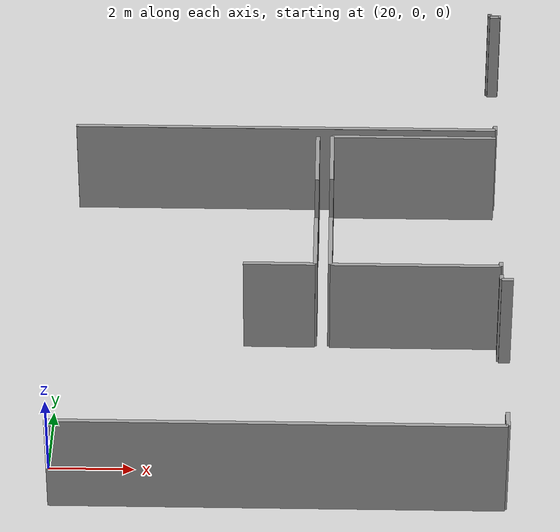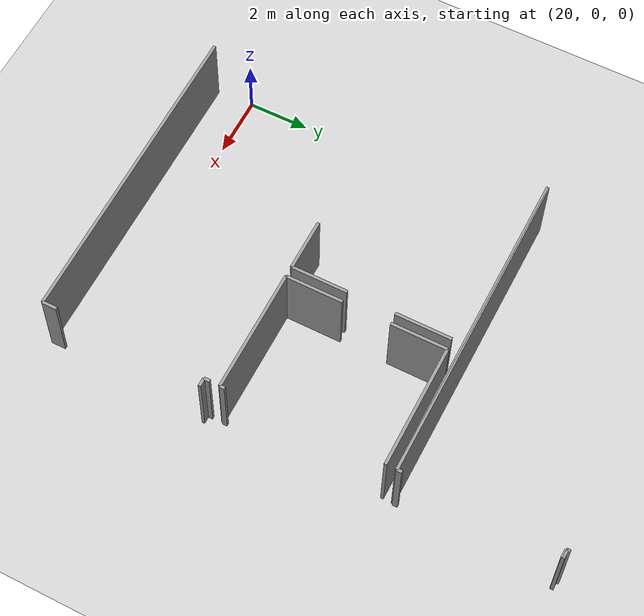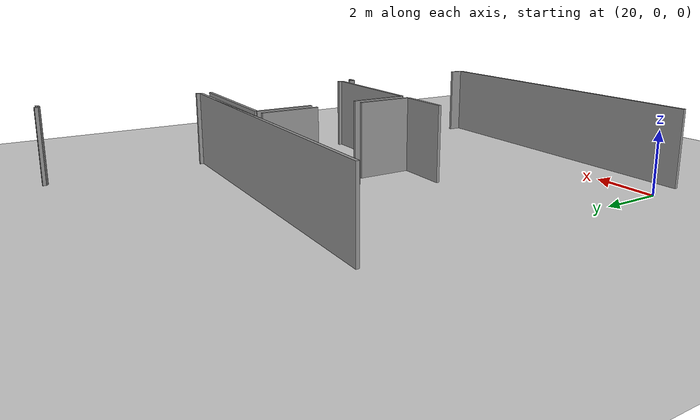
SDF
<sdf version="1.6">
 <world name="default">
  <model name="ground_plane">
   <static>1</static>
   <link name="link">
    <collision name="collision">
     <geometry><plane><normal>0 0 1</normal><size>100 100</size></plane></geometry>
     <surface><friction><ode><mu>100</mu><mu2>50</mu2></ode></friction></surface>
    </collision>
    <visual name="visual">
     <cast_shadows>0</cast_shadows>
     <geometry><plane><normal>0 0 1</normal><size>100 100</size></plane></geometry>
     <material>
      <script><uri>file://media/materials/scripts/gazebo.material</uri><name>Gazebo/Grey</name></script>
     </material>
    </visual>
   </link>
  </model>
  <model name="50015847">
   <static>1</static>
   <link name="Wall_517">
    <collision name="Wall_517_Collision">
     <geometry><box><size>0.129658819342 0.1 2.5</size></box></geometry>
     <pose>0.064829409671 0 1.25 0 0 0</pose>
    </collision>
    <visual name="Wall_517_Visual">
     <pose>0.064829409671 0 1.25 0 0 0</pose>
     <geometry><box><size>0.129658819342 0.1 2.5</size></box></geometry>
     <material>
      <script><uri>file://media/materials/scripts/gazebo.material</uri><name>Gazebo/Grey</name></script>
      <ambient>1 1 1 1</ambient>
     </material>
    </visual>
    <pose>162.878934255 -28.3683327401 0 0 0 -1.57079632679</pose>
   </link>
   <link name="Wall_518">
    <collision name="Wall_518_Collision">
     <geometry><box><size>0.262622667412 0.1 2.5</size></box></geometry>
     <pose>0.131311333706 0 1.25 0 0 0</pose>
    </collision>
    <visual name="Wall_518_Visual">
     <pose>0.131311333706 0 1.25 0 0 0</pose>
     <geometry><box><size>0.262622667412 0.1 2.5</size></box></geometry>
     <material>
      <script><uri>file://media/materials/scripts/gazebo.material</uri><name>Gazebo/Grey</name></script>
      <ambient>1 1 1 1</ambient>
     </material>
    </visual>
    <pose>162.878934255 -28.4979915595 0 0 0 0.0</pose>
   </link>
   <link name="Wall_520">
    <collision name="Wall_520_Collision">
     <geometry><box><size>0.173641124727 0.1 2.5</size></box></geometry>
     <pose>0.0868205623634 0 1.25 0 0 0</pose>
    </collision>
    <visual name="Wall_520_Visual">
     <pose>0.0868205623634 0 1.25 0 0 0</pose>
     <geometry><box><size>0.173641124727 0.1 2.5</size></box></geometry>
     <material>
      <script><uri>file://media/materials/scripts/gazebo.material</uri><name>Gazebo/Grey</name></script>
      <ambient>1 1 1 1</ambient>
     </material>
    </visual>
    <pose>162.882493517 -33.4517211573 0 0 0 -1.57079632679</pose>
   </link>
   <link name="Wall_521">
    <collision name="Wall_521_Collision">
     <geometry><box><size>10.4716021762 0.1 2.5</size></box></geometry>
     <pose>5.23580108812 0 1.25 0 0 0</pose>
    </collision>
    <visual name="Wall_521_Visual">
     <pose>5.23580108812 0 1.25 0 0 0</pose>
     <geometry><box><size>10.4716021762 0.1 2.5</size></box></geometry>
     <material>
      <script><uri>file://media/materials/scripts/gazebo.material</uri><name>Gazebo/Grey</name></script>
      <ambient>1 1 1 1</ambient>
     </material>
    </visual>
    <pose>162.882493517 -33.625362282 0 0 0 3.14159265359</pose>
   </link>
   <link name="Wall_528">
    <collision name="Wall_528_Collision">
     <geometry><box><size>0.0999135607871 0.1 2.5</size></box></geometry>
     <pose>0.0499567803936 0 1.25 0 0 0</pose>
    </collision>
    <visual name="Wall_528_Visual">
     <pose>0.0499567803936 0 1.25 0 0 0</pose>
     <geometry><box><size>0.0999135607871 0.1 2.5</size></box></geometry>
     <material>
      <script><uri>file://media/materials/scripts/gazebo.material</uri><name>Gazebo/Grey</name></script>
      <ambient>1 1 1 1</ambient>
     </material>
    </visual>
    <pose>162.877408857 -28.3800274572 0 0 0 -1.57079632679</pose>
   </link>
   <link name="Wall_529">
    <collision name="Wall_529_Collision">
     <geometry><box><size>0.276605481263 0.1 2.5</size></box></geometry>
     <pose>0.138302740632 0 1.25 0 0 0</pose>
    </collision>
    <visual name="Wall_529_Visual">
     <pose>0.138302740632 0 1.25 0 0 0</pose>
     <geometry><box><size>0.276605481263 0.1 2.5</size></box></geometry>
     <material>
      <script><uri>file://media/materials/scripts/gazebo.material</uri><name>Gazebo/Grey</name></script>
      <ambient>1 1 1 1</ambient>
     </material>
    </visual>
    <pose>162.877408857 -28.4799410179 0 0 0 0.0</pose>
   </link>
   <link name="Wall_532">
    <collision name="Wall_532_Collision">
     <geometry><box><size>10.4766868358 0.1 2.5</size></box></geometry>
     <pose>5.23834341791 0 1.25 0 0 0</pose>
    </collision>
    <visual name="Wall_532_Visual">
     <pose>5.23834341791 0 1.25 0 0 0</pose>
     <geometry><box><size>10.4766868358 0.1 2.5</size></box></geometry>
     <material>
      <script><uri>file://media/materials/scripts/gazebo.material</uri><name>Gazebo/Grey</name></script>
      <ambient>1 1 1 1</ambient>
     </material>
    </visual>
    <pose>162.886307012 -33.6212945543 0 0 0 3.14159265359</pose>
   </link>
   <link name="Wall_544">
    <collision name="Wall_544_Collision">
     <geometry><box><size>1.83683327401 0.1 2.5</size></box></geometry>
     <pose>0.918416637006 0 1.25 0 0 0</pose>
    </collision>
    <visual name="Wall_544_Visual">
     <pose>0.918416637006 0 1.25 0 0 0</pose>
     <geometry><box><size>1.83683327401 0.1 2.5</size></box></geometry>
     <material>
      <script><uri>file://media/materials/scripts/gazebo.material</uri><name>Gazebo/Grey</name></script>
      <ambient>1 1 1 1</ambient>
     </material>
    </visual>
    <pose>158.460110846 -33.9978135964 0 0 0 -1.57079632679</pose>
   </link>
   <link name="Wall_545">
    <collision name="Wall_545_Collision">
     <geometry><box><size>1.83861290487 0.1 2.5</size></box></geometry>
     <pose>0.919306452433 0 1.25 0 0 0</pose>
    </collision>
    <visual name="Wall_545_Visual">
     <pose>0.919306452433 0 1.25 0 0 0</pose>
     <geometry><box><size>1.83861290487 0.1 2.5</size></box></geometry>
     <material>
      <script><uri>file://media/materials/scripts/gazebo.material</uri><name>Gazebo/Grey</name></script>
      <ambient>1 1 1 1</ambient>
     </material>
    </visual>
    <pose>158.460110846 -37.3951288961 0 0 0 -1.57079632679</pose>
   </link>
   <link name="Wall_546">
    <collision name="Wall_546_Collision">
     <geometry><box><size>1.71608345618 0.1 2.5</size></box></geometry>
     <pose>0.858041728089 0 1.25 0 0 0</pose>
    </collision>
    <visual name="Wall_546_Visual">
     <pose>0.858041728089 0 1.25 0 0 0</pose>
     <geometry><box><size>1.71608345618 0.1 2.5</size></box></geometry>
     <material>
      <script><uri>file://media/materials/scripts/gazebo.material</uri><name>Gazebo/Grey</name></script>
      <ambient>1 1 1 1</ambient>
     </material>
    </visual>
    <pose>158.460110846 -39.233741801 0 0 0 3.13803711302</pose>
   </link>
   <link name="Wall_547">
    <collision name="Wall_547_Collision">
     <geometry><box><size>4.06950729649 0.1 2.5</size></box></geometry>
     <pose>2.03475364824 0 1.25 0 0 0</pose>
    </collision>
    <visual name="Wall_547_Visual">
     <pose>2.03475364824 0 1.25 0 0 0</pose>
     <geometry><box><size>4.06950729649 0.1 2.5</size></box></geometry>
     <material>
      <script><uri>file://media/materials/scripts/gazebo.material</uri><name>Gazebo/Grey</name></script>
      <ambient>1 1 1 1</ambient>
     </material>
    </visual>
    <pose>158.817308181 -33.9728987644 0 0 0 0.0</pose>
   </link>
   <link name="Wall_552">
    <collision name="Wall_552_Collision">
     <geometry><box><size>0.162454873646 0.1 2.5</size></box></geometry>
     <pose>0.0812274368231 0 1.25 0 0 0</pose>
    </collision>
    <visual name="Wall_552_Visual">
     <pose>0.0812274368231 0 1.25 0 0 0</pose>
     <geometry><box><size>0.162454873646 0.1 2.5</size></box></geometry>
     <material>
      <script><uri>file://media/materials/scripts/gazebo.material</uri><name>Gazebo/Grey</name></script>
      <ambient>1 1 1 1</ambient>
     </material>
    </visual>
    <pose>162.883256216 -39.0771342859 0 0 0 -1.57079632679</pose>
   </link>
   <link name="Wall_553">
    <collision name="Wall_553_Collision">
     <geometry><box><size>4.0669649667 0.1 2.5</size></box></geometry>
     <pose>2.03348248335 0 1.25 0 0 0</pose>
    </collision>
    <visual name="Wall_553_Visual">
     <pose>2.03348248335 0 1.25 0 0 0</pose>
     <geometry><box><size>4.0669649667 0.1 2.5</size></box></geometry>
     <material>
      <script><uri>file://media/materials/scripts/gazebo.material</uri><name>Gazebo/Grey</name></script>
      <ambient>1 1 1 1</ambient>
     </material>
    </visual>
    <pose>162.883256216 -39.2395891595 0 0 0 3.14159265359</pose>
   </link>
   <link name="Wall_554">
    <collision name="Wall_554_Collision">
     <geometry><box><size>1.87013779427 0.1 2.5</size></box></geometry>
     <pose>0.935068897137 0 1.25 0 0 0</pose>
    </collision>
    <visual name="Wall_554_Visual">
     <pose>0.935068897137 0 1.25 0 0 0</pose>
     <geometry><box><size>1.87013779427 0.1 2.5</size></box></geometry>
     <material>
      <script><uri>file://media/materials/scripts/gazebo.material</uri><name>Gazebo/Grey</name></script>
      <ambient>1 1 1 1</ambient>
     </material>
    </visual>
    <pose>158.816291249 -39.2395891595 0 0 0 1.57079632679</pose>
   </link>
   <link name="Wall_555">
    <collision name="Wall_555_Collision">
     <geometry><box><size>1.82996926614 0.1 2.5</size></box></geometry>
     <pose>0.914984633068 0 1.25 0 0 0</pose>
    </collision>
    <visual name="Wall_555_Visual">
     <pose>0.914984633068 0 1.25 0 0 0</pose>
     <geometry><box><size>1.82996926614 0.1 2.5</size></box></geometry>
     <material>
      <script><uri>file://media/materials/scripts/gazebo.material</uri><name>Gazebo/Grey</name></script>
      <ambient>1 1 1 1</ambient>
     </material>
    </visual>
    <pose>158.816291249 -35.802867748 0 0 0 1.57024061693</pose>
   </link>
   <link name="Wall_557">
    <collision name="Wall_557_Collision">
     <geometry><box><size>0.189403569431 0.1 2.5</size></box></geometry>
     <pose>0.0947017847155 0 1.25 0 0 0</pose>
    </collision>
    <visual name="Wall_557_Visual">
     <pose>0.0947017847155 0 1.25 0 0 0</pose>
     <geometry><box><size>0.189403569431 0.1 2.5</size></box></geometry>
     <material>
      <script><uri>file://media/materials/scripts/gazebo.material</uri><name>Gazebo/Grey</name></script>
      <ambient>1 1 1 1</ambient>
     </material>
    </visual>
    <pose>162.883256216 -39.5662785377 0 0 0 -1.57079632679</pose>
   </link>
   <link name="Wall_558">
    <collision name="Wall_558_Collision">
     <geometry><box><size>0.277113947221 0.1 2.5</size></box></geometry>
     <pose>0.138556973611 0 1.25 0 0 0</pose>
    </collision>
    <visual name="Wall_558_Visual">
     <pose>0.138556973611 0 1.25 0 0 0</pose>
     <geometry><box><size>0.277113947221 0.1 2.5</size></box></geometry>
     <material>
      <script><uri>file://media/materials/scripts/gazebo.material</uri><name>Gazebo/Grey</name></script>
      <ambient>1 1 1 1</ambient>
     </material>
    </visual>
    <pose>162.883256216 -39.7556821071 0 0 0 0.0</pose>
   </link>
   <link name="Wall_561">
    <collision name="Wall_561_Collision">
     <geometry><box><size>0.482025728377 0.1 2.5</size></box></geometry>
     <pose>0.241012864189 0 1.25 0 0 0</pose>
    </collision>
    <visual name="Wall_561_Visual">
     <pose>0.241012864189 0 1.25 0 0 0</pose>
     <geometry><box><size>0.482025728377 0.1 2.5</size></box></geometry>
     <material>
      <script><uri>file://media/materials/scripts/gazebo.material</uri><name>Gazebo/Grey</name></script>
      <ambient>1 1 1 1</ambient>
     </material>
    </visual>
    <pose>162.881476585 -44.6773783495 0 0 0 -1.57079632679</pose>
   </link>
   <link name="Wall_562">
    <collision name="Wall_562_Collision">
     <geometry><box><size>10.4548227996 0.1 2.5</size></box></geometry>
     <pose>5.22741139981 0 1.25 0 0 0</pose>
    </collision>
    <visual name="Wall_562_Visual">
     <pose>5.22741139981 0 1.25 0 0 0</pose>
     <geometry><box><size>10.4548227996 0.1 2.5</size></box></geometry>
     <material>
      <script><uri>file://media/materials/scripts/gazebo.material</uri><name>Gazebo/Grey</name></script>
      <ambient>1 1 1 1</ambient>
     </material>
    </visual>
    <pose>162.881476585 -45.1594040779 0 0 0 3.14159265359</pose>
   </link>
   <pose>-132.35 43.9162226064 0 0 0 0</pose>
  </model>
 </world>
</sdf>
